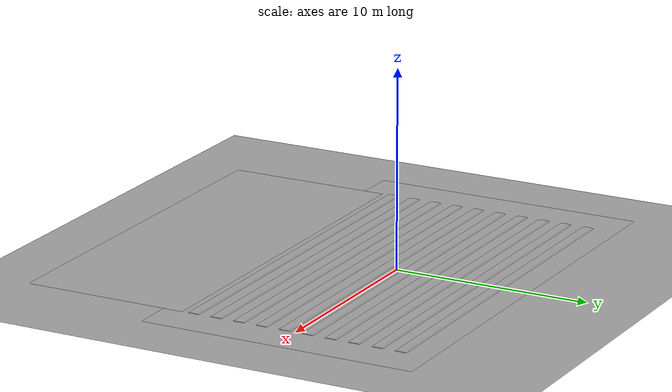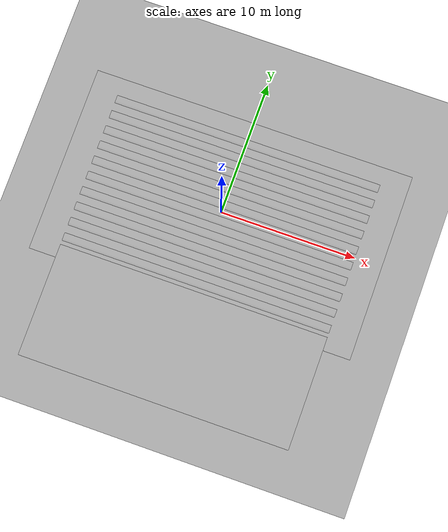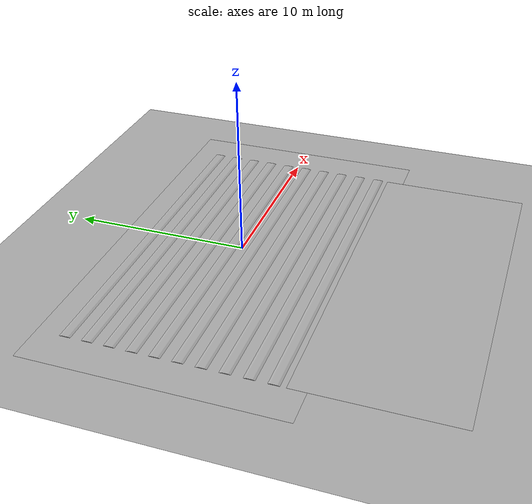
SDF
<sdf version="1.9">
 <world name="plasticulture">
  <physics name="default_physics" type="ignored">
   <max_step_size>0.01</max_step_size>
   <real_time_factor>1.0</real_time_factor>
  </physics>
  <plugin filename="gz-sim-physics-system" name="gz::sim::systems::Physics"/>
  <plugin filename="gz-sim-user-commands-system" name="gz::sim::systems::UserCommands"/>
  <plugin filename="gz-sim-scene-broadcaster-system" name="gz::sim::systems::SceneBroadcaster"/>
  <plugin filename="gz-sim-sensors-system" name="gz::sim::systems::Sensors">
   <render_engine>ogre2</render_engine>
  </plugin>
  <plugin filename="gz-sim-navsat-system" name="gz::sim::systems::NavSat"/>
  <plugin filename="gz-sim-imu-system" name="gz::sim::systems::Imu"/>
  <spherical_coordinates>
   <surface_model>EARTH_WGS84</surface_model>
   <world_frame_orientation>ENU</world_frame_orientation>
   <latitude_deg>45.395134</latitude_deg>
   <longitude_deg>-75.572868</longitude_deg>
   <elevation>70.0</elevation>
   <heading_deg>0.0</heading_deg>
  </spherical_coordinates>
  <scene>
   <ambient>0.55 0.55 0.55 1</ambient>
   <background>0.7 0.8 0.9 1</background>
   <sky><clouds><speed>2</speed></clouds></sky>
   <grid>false</grid>
  </scene>
  <light type="directional" name="sun">
   <pose>0 0 10 0 0 0</pose>
   <diffuse>0.85 0.85 0.85 1</diffuse>
   <specular>0.3 0.3 0.3 1</specular>
   <direction>-0.5 0.1 -0.9</direction>
  </light>
  <light type="directional" name="fill">
   <cast_shadows>false</cast_shadows>
   <pose>0 0 10 0 0 0</pose>
   <diffuse>0.35 0.35 0.35 1</diffuse>
   <specular>0 0 0 1</specular>
   <direction>0.5 -0.1 -0.9</direction>
  </light>
  <model name="ground_plane">
   <static>true</static>
   <link name="link">
    <collision name="collision">
     <geometry><plane><normal>0 0 1</normal><size>200 200</size></plane></geometry>
    </collision>
    <visual name="visual"><geometry><mesh><uri>model://materials/grass_plane.dae</uri></mesh></geometry></visual>
    <visual name="dirt_visual">
     <pose>0 0 0.005 0 0 0</pose>
     <geometry><mesh><uri>model://materials/dirt_patch.dae</uri></mesh></geometry>
    </visual>
    <visual name="flat_tarp_visual">
     <pose>0 -10.2 0.008 0 0 0</pose>
     <geometry><mesh><uri>model://materials/flat_tarp.dae</uri></mesh></geometry>
    </visual>
   </link>
  </model>
  <model name="bed_0">
   <static>true</static>
   <pose>0 -5.4 0 0 0 0</pose>
   <link name="link">
    <visual name="visual">
     <geometry><mesh><uri>model://materials/plasticulture_bed_a.dae</uri></mesh></geometry>
    </visual>
    <collision name="collision">
     <geometry><mesh><uri>model://materials/plasticulture_bed_a.dae</uri></mesh></geometry>
    </collision>
   </link>
  </model>
  <model name="bed_1">
   <static>true</static>
   <pose>0 -4.2 0 0 0 0</pose>
   <link name="link">
    <visual name="visual">
     <geometry><mesh><uri>model://materials/plasticulture_bed_b.dae</uri></mesh></geometry>
    </visual>
    <collision name="collision">
     <geometry><mesh><uri>model://materials/plasticulture_bed_b.dae</uri></mesh></geometry>
    </collision>
   </link>
  </model>
  <model name="bed_2">
   <static>true</static>
   <pose>0 -3 0 0 0 0</pose>
   <link name="link">
    <visual name="visual">
     <geometry><mesh><uri>model://materials/plasticulture_bed_a.dae</uri></mesh></geometry>
    </visual>
    <collision name="collision">
     <geometry><mesh><uri>model://materials/plasticulture_bed_a.dae</uri></mesh></geometry>
    </collision>
   </link>
  </model>
  <model name="bed_3">
   <static>true</static>
   <pose>0 -1.8 0 0 0 0</pose>
   <link name="link">
    <visual name="visual">
     <geometry><mesh><uri>model://materials/plasticulture_bed_b.dae</uri></mesh></geometry>
    </visual>
    <collision name="collision">
     <geometry><mesh><uri>model://materials/plasticulture_bed_b.dae</uri></mesh></geometry>
    </collision>
   </link>
  </model>
  <model name="bed_4">
   <static>true</static>
   <pose>0 -0.6 0 0 0 0</pose>
   <link name="link">
    <visual name="visual">
     <geometry><mesh><uri>model://materials/plasticulture_bed_a.dae</uri></mesh></geometry>
    </visual>
    <collision name="collision">
     <geometry><mesh><uri>model://materials/plasticulture_bed_a.dae</uri></mesh></geometry>
    </collision>
   </link>
  </model>
  <model name="bed_5">
   <static>true</static>
   <pose>0 0.6 0 0 0 0</pose>
   <link name="link">
    <visual name="visual">
     <geometry><mesh><uri>model://materials/plasticulture_bed_b.dae</uri></mesh></geometry>
    </visual>
    <collision name="collision">
     <geometry><mesh><uri>model://materials/plasticulture_bed_b.dae</uri></mesh></geometry>
    </collision>
   </link>
  </model>
  <model name="bed_6">
   <static>true</static>
   <pose>0 1.8 0 0 0 0</pose>
   <link name="link">
    <visual name="visual">
     <geometry><mesh><uri>model://materials/plasticulture_bed_a.dae</uri></mesh></geometry>
    </visual>
    <collision name="collision">
     <geometry><mesh><uri>model://materials/plasticulture_bed_a.dae</uri></mesh></geometry>
    </collision>
   </link>
  </model>
  <model name="bed_7">
   <static>true</static>
   <pose>0 3 0 0 0 0</pose>
   <link name="link">
    <visual name="visual">
     <geometry><mesh><uri>model://materials/plasticulture_bed_b.dae</uri></mesh></geometry>
    </visual>
    <collision name="collision">
     <geometry><mesh><uri>model://materials/plasticulture_bed_b.dae</uri></mesh></geometry>
    </collision>
   </link>
  </model>
  <model name="bed_8">
   <static>true</static>
   <pose>0 4.2 0 0 0 0</pose>
   <link name="link">
    <visual name="visual">
     <geometry><mesh><uri>model://materials/plasticulture_bed_a.dae</uri></mesh></geometry>
    </visual>
    <collision name="collision">
     <geometry><mesh><uri>model://materials/plasticulture_bed_a.dae</uri></mesh></geometry>
    </collision>
   </link>
  </model>
  <model name="bed_9">
   <static>true</static>
   <pose>0 5.4 0 0 0 0</pose>
   <link name="link">
    <visual name="visual">
     <geometry><mesh><uri>model://materials/plasticulture_bed_b.dae</uri></mesh></geometry>
    </visual>
    <collision name="collision">
     <geometry><mesh><uri>model://materials/plasticulture_bed_b.dae</uri></mesh></geometry>
    </collision>
   </link>
  </model>
 </world>
</sdf>
